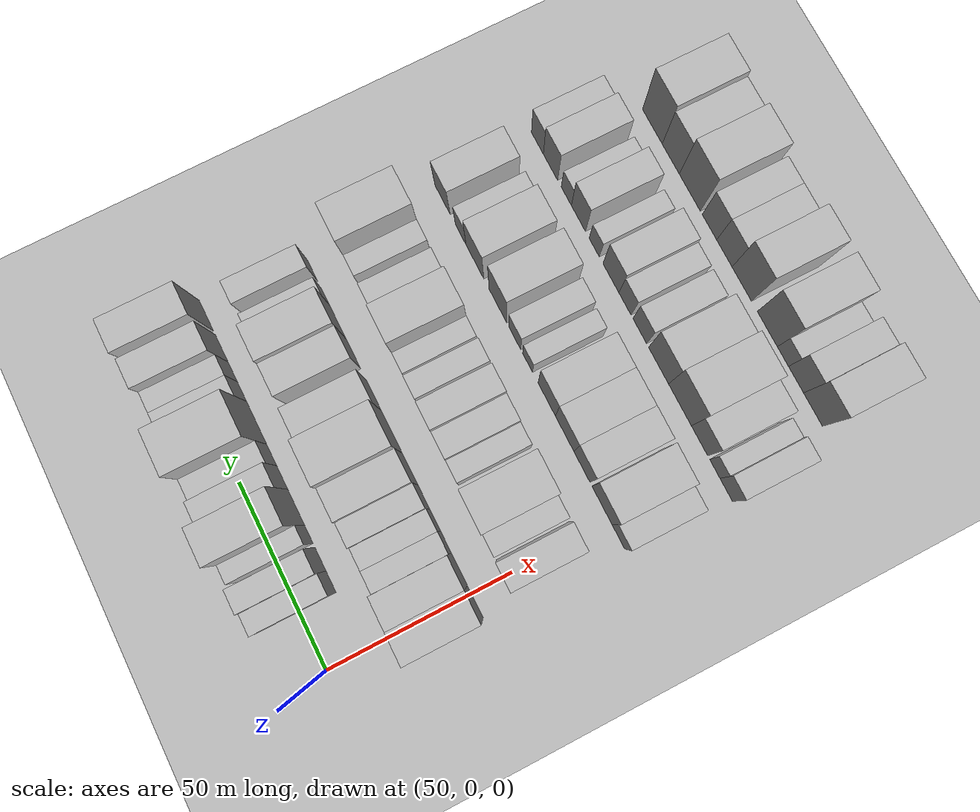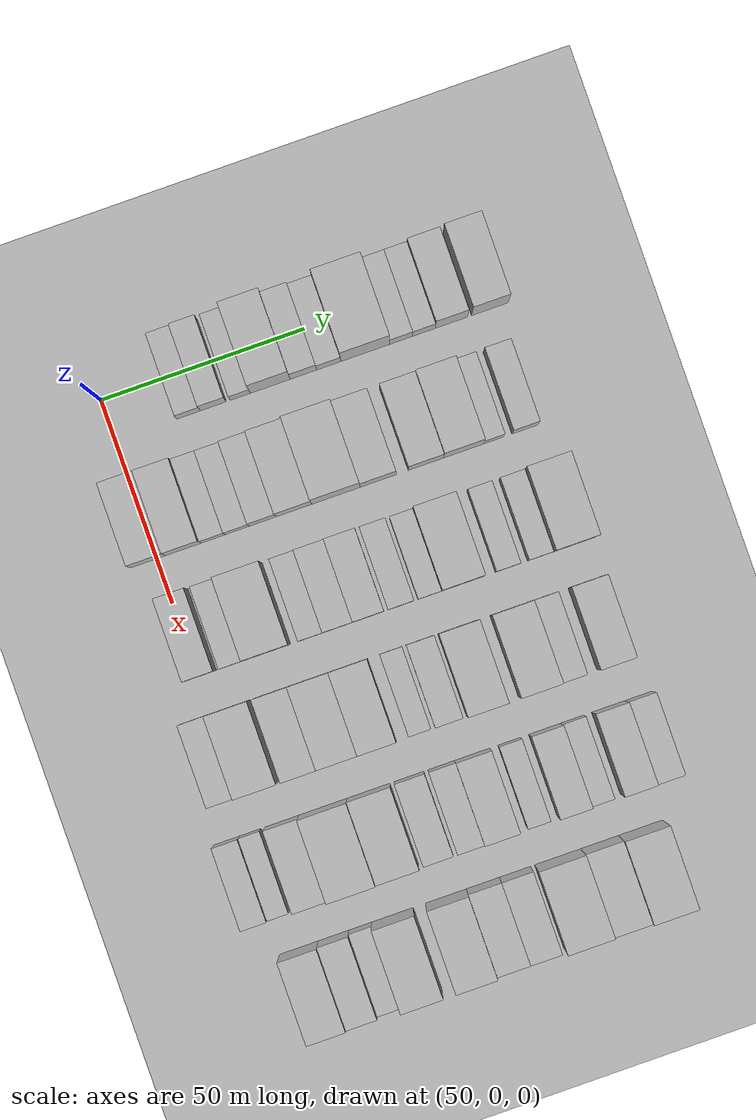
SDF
<sdf version="1.6">
 <world name="default">
  <include><name>ground_plane_1</name><uri>model://HANNAS_ground_plane</uri></include>
  <include>
   <name>ground_plane_2</name>
   <uri>model://HANNAS_ground_plane</uri>
   <pose>100 0 0  0 0 0</pose>
  </include>
  <model name="building_58">
   <static>1</static>
   <pose>50.0000 18.1150 0 0.000000 0.000000 0.000000</pose>
   <link name="link">
    <pose>0 0 6.00 0 0 0</pose>
    <collision name="collision"><geometry><box><size>20.0000 5.7359 12.0000</size></box></geometry></collision>
    <visual name="visual">
     <cast_shadows>0</cast_shadows>
     <geometry><box><size>20.0000 5.7359 12.0000</size></box></geometry>
     <material>
      <script>
       <uri>model://HANNAS_wall/materials/scripts</uri>
       <uri>model://HANNAS_wall/materials/textures</uri>
       <name>vrc/HANNAS_wall</name>
      </script>
     </material>
    </visual>
   </link>
  </model>
  <model name="building_59">
   <static>1</static>
   <pose>50.0000 24.1416 0 0.000000 0.000000 0.000000</pose>
   <link name="link">
    <pose>0 0 7.50 0 0 0</pose>
    <collision name="collision"><geometry><box><size>20.0000 6.3172 15.0000</size></box></geometry></collision>
    <visual name="visual">
     <cast_shadows>0</cast_shadows>
     <geometry><box><size>20.0000 6.3172 15.0000</size></box></geometry>
     <material>
      <script>
       <uri>model://HANNAS_wall/materials/scripts</uri>
       <uri>model://HANNAS_wall/materials/textures</uri>
       <name>vrc/HANNAS_wall</name>
      </script>
     </material>
    </visual>
   </link>
  </model>
  <model name="building_60">
   <static>1</static>
   <pose>50.0000 30.7766 0 0.000000 0.000000 0.000000</pose>
   <link name="link">
    <pose>0 0 6.00 0 0 0</pose>
    <collision name="collision"><geometry><box><size>20.0000 4.9528 12.0000</size></box></geometry></collision>
    <visual name="visual">
     <cast_shadows>0</cast_shadows>
     <geometry><box><size>20.0000 4.9528 12.0000</size></box></geometry>
     <material>
      <script>
       <uri>model://HANNAS_wall/materials/scripts</uri>
       <uri>model://HANNAS_wall/materials/textures</uri>
       <name>vrc/HANNAS_wall</name>
      </script>
     </material>
    </visual>
   </link>
  </model>
  <model name="building_61">
   <static>1</static>
   <pose>50.0000 38.1352 0 0.000000 0.000000 0.000000</pose>
   <link name="link">
    <pose>0 0 12.00 0 0 0</pose>
    <collision name="collision"><geometry><box><size>20.0000 9.7643 24.0000</size></box></geometry></collision>
    <visual name="visual">
     <cast_shadows>0</cast_shadows>
     <geometry><box><size>20.0000 9.7643 24.0000</size></box></geometry>
     <material>
      <script>
       <uri>model://HANNAS_wall/materials/scripts</uri>
       <uri>model://HANNAS_wall/materials/textures</uri>
       <name>vrc/HANNAS_wall</name>
      </script>
     </material>
    </visual>
   </link>
  </model>
  <model name="building_62">
   <static>1</static>
   <pose>50.0000 46.2625 0 0.000000 0.000000 0.000000</pose>
   <link name="link">
    <pose>0 0 7.50 0 0 0</pose>
    <collision name="collision"><geometry><box><size>20.0000 6.4903 15.0000</size></box></geometry></collision>
    <visual name="visual">
     <cast_shadows>0</cast_shadows>
     <geometry><box><size>20.0000 6.4903 15.0000</size></box></geometry>
     <material>
      <script>
       <uri>model://HANNAS_wall/materials/scripts</uri>
       <uri>model://HANNAS_wall/materials/textures</uri>
       <name>vrc/HANNAS_wall</name>
      </script>
     </material>
    </visual>
   </link>
  </model>
  <model name="building_63">
   <static>1</static>
   <pose>50.0000 52.4807 0 0.000000 0.000000 0.000000</pose>
   <link name="link">
    <pose>0 0 6.00 0 0 0</pose>
    <collision name="collision"><geometry><box><size>20.0000 5.9462 12.0000</size></box></geometry></collision>
    <visual name="visual">
     <cast_shadows>0</cast_shadows>
     <geometry><box><size>20.0000 5.9462 12.0000</size></box></geometry>
     <material>
      <script>
       <uri>model://HANNAS_wall/materials/scripts</uri>
       <uri>model://HANNAS_wall/materials/textures</uri>
       <name>vrc/HANNAS_wall</name>
      </script>
     </material>
    </visual>
   </link>
  </model>
  <model name="building_64">
   <static>1</static>
   <pose>50.0000 61.4461 0 0.000000 0.000000 0.000000</pose>
   <link name="link">
    <pose>0 0 12.00 0 0 0</pose>
    <collision name="collision"><geometry><box><size>20.0000 11.9845 24.0000</size></box></geometry></collision>
    <visual name="visual">
     <cast_shadows>0</cast_shadows>
     <geometry><box><size>20.0000 11.9845 24.0000</size></box></geometry>
     <material>
      <script>
       <uri>model://HANNAS_wall/materials/scripts</uri>
       <uri>model://HANNAS_wall/materials/textures</uri>
       <name>vrc/HANNAS_wall</name>
      </script>
     </material>
    </visual>
   </link>
  </model>
  <model name="building_65">
   <static>1</static>
   <pose>50.0000 70.2443 0 0.000000 0.000000 0.000000</pose>
   <link name="link">
    <pose>0 0 6.00 0 0 0</pose>
    <collision name="collision"><geometry><box><size>20.0000 5.6118 12.0000</size></box></geometry></collision>
    <visual name="visual">
     <cast_shadows>0</cast_shadows>
     <geometry><box><size>20.0000 5.6118 12.0000</size></box></geometry>
     <material>
      <script>
       <uri>model://HANNAS_wall/materials/scripts</uri>
       <uri>model://HANNAS_wall/materials/textures</uri>
       <name>vrc/HANNAS_wall</name>
      </script>
     </material>
    </visual>
   </link>
  </model>
  <model name="building_66">
   <static>1</static>
   <pose>50.0000 75.8415 0 0.000000 0.000000 0.000000</pose>
   <link name="link">
    <pose>0 0 6.00 0 0 0</pose>
    <collision name="collision"><geometry><box><size>20.0000 5.5827 12.0000</size></box></geometry></collision>
    <visual name="visual">
     <cast_shadows>0</cast_shadows>
     <geometry><box><size>20.0000 5.5827 12.0000</size></box></geometry>
     <material>
      <script>
       <uri>model://HANNAS_wall/materials/scripts</uri>
       <uri>model://HANNAS_wall/materials/textures</uri>
       <name>vrc/HANNAS_wall</name>
      </script>
     </material>
    </visual>
   </link>
  </model>
  <model name="building_67">
   <static>1</static>
   <pose>50.0000 82.5876 0 0.000000 0.000000 0.000000</pose>
   <link name="link">
    <pose>0 0 9.00 0 0 0</pose>
    <collision name="collision"><geometry><box><size>20.0000 7.9095 18.0000</size></box></geometry></collision>
    <visual name="visual">
     <cast_shadows>0</cast_shadows>
     <geometry><box><size>20.0000 7.9095 18.0000</size></box></geometry>
     <material>
      <script>
       <uri>model://HANNAS_wall/materials/scripts</uri>
       <uri>model://HANNAS_wall/materials/textures</uri>
       <name>vrc/HANNAS_wall</name>
      </script>
     </material>
    </visual>
   </link>
  </model>
  <model name="building_68">
   <static>1</static>
   <pose>50.0000 92.0320 0 0.000000 0.000000 0.000000</pose>
   <link name="link">
    <pose>0 0 10.50 0 0 0</pose>
    <collision name="collision"><geometry><box><size>20.0000 8.9793 21.0000</size></box></geometry></collision>
    <visual name="visual">
     <cast_shadows>0</cast_shadows>
     <geometry><box><size>20.0000 8.9793 21.0000</size></box></geometry>
     <material>
      <script>
       <uri>model://HANNAS_wall/materials/scripts</uri>
       <uri>model://HANNAS_wall/materials/textures</uri>
       <name>vrc/HANNAS_wall</name>
      </script>
     </material>
    </visual>
   </link>
  </model>
  <model name="building_177">
   <static>1</static>
   <pose>79.0000 -1.9783 0 0.000000 0.000000 0.000000</pose>
   <link name="link">
    <pose>0 0 9.00 0 0 0</pose>
    <collision name="collision"><geometry><box><size>20.0000 8.4946 18.0000</size></box></geometry></collision>
    <visual name="visual">
     <cast_shadows>0</cast_shadows>
     <geometry><box><size>20.0000 8.4946 18.0000</size></box></geometry>
     <material>
      <script>
       <uri>model://HANNAS_wall/materials/scripts</uri>
       <uri>model://HANNAS_wall/materials/textures</uri>
       <name>vrc/HANNAS_wall</name>
      </script>
     </material>
    </visual>
   </link>
  </model>
  <model name="building_178">
   <static>1</static>
   <pose>79.0000 6.6307 0 0.000000 0.000000 0.000000</pose>
   <link name="link">
    <pose>0 0 9.00 0 0 0</pose>
    <collision name="collision"><geometry><box><size>20.0000 8.7234 18.0000</size></box></geometry></collision>
    <visual name="visual">
     <cast_shadows>0</cast_shadows>
     <geometry><box><size>20.0000 8.7234 18.0000</size></box></geometry>
     <material>
      <script>
       <uri>model://HANNAS_wall/materials/scripts</uri>
       <uri>model://HANNAS_wall/materials/textures</uri>
       <name>vrc/HANNAS_wall</name>
      </script>
     </material>
    </visual>
   </link>
  </model>
  <model name="building_179">
   <static>1</static>
   <pose>79.0000 13.9100 0 0.000000 0.000000 0.000000</pose>
   <link name="link">
    <pose>0 0 6.00 0 0 0</pose>
    <collision name="collision"><geometry><box><size>20.0000 5.8351 12.0000</size></box></geometry></collision>
    <visual name="visual">
     <cast_shadows>0</cast_shadows>
     <geometry><box><size>20.0000 5.8351 12.0000</size></box></geometry>
     <material>
      <script>
       <uri>model://HANNAS_wall/materials/scripts</uri>
       <uri>model://HANNAS_wall/materials/textures</uri>
       <name>vrc/HANNAS_wall</name>
      </script>
     </material>
    </visual>
   </link>
  </model>
  <model name="building_180">
   <static>1</static>
   <pose>79.0000 19.7990 0 0.000000 0.000000 0.000000</pose>
   <link name="link">
    <pose>0 0 6.00 0 0 0</pose>
    <collision name="collision"><geometry><box><size>20.0000 5.9429 12.0000</size></box></geometry></collision>
    <visual name="visual">
     <cast_shadows>0</cast_shadows>
     <geometry><box><size>20.0000 5.9429 12.0000</size></box></geometry>
     <material>
      <script>
       <uri>model://HANNAS_wall/materials/scripts</uri>
       <uri>model://HANNAS_wall/materials/textures</uri>
       <name>vrc/HANNAS_wall</name>
      </script>
     </material>
    </visual>
   </link>
  </model>
  <model name="building_181">
   <static>1</static>
   <pose>79.0000 26.0625 0 0.000000 0.000000 0.000000</pose>
   <link name="link">
    <pose>0 0 7.50 0 0 0</pose>
    <collision name="collision"><geometry><box><size>20.0000 6.5840 15.0000</size></box></geometry></collision>
    <visual name="visual">
     <cast_shadows>0</cast_shadows>
     <geometry><box><size>20.0000 6.5840 15.0000</size></box></geometry>
     <material>
      <script>
       <uri>model://HANNAS_wall/materials/scripts</uri>
       <uri>model://HANNAS_wall/materials/textures</uri>
       <name>vrc/HANNAS_wall</name>
      </script>
     </material>
    </visual>
   </link>
  </model>
  <model name="building_182">
   <static>1</static>
   <pose>79.0000 33.7383 0 0.000000 0.000000 0.000000</pose>
   <link name="link">
    <pose>0 0 9.00 0 0 0</pose>
    <collision name="collision"><geometry><box><size>20.0000 8.7677 18.0000</size></box></geometry></collision>
    <visual name="visual">
     <cast_shadows>0</cast_shadows>
     <geometry><box><size>20.0000 8.7677 18.0000</size></box></geometry>
     <material>
      <script>
       <uri>model://HANNAS_wall/materials/scripts</uri>
       <uri>model://HANNAS_wall/materials/textures</uri>
       <name>vrc/HANNAS_wall</name>
      </script>
     </material>
    </visual>
   </link>
  </model>
  <model name="building_183">
   <static>1</static>
   <pose>79.0000 44.0597 0 0.000000 0.000000 0.000000</pose>
   <link name="link">
    <pose>0 0 12.00 0 0 0</pose>
    <collision name="collision"><geometry><box><size>20.0000 11.8750 24.0000</size></box></geometry></collision>
    <visual name="visual">
     <cast_shadows>0</cast_shadows>
     <geometry><box><size>20.0000 11.8750 24.0000</size></box></geometry>
     <material>
      <script>
       <uri>model://HANNAS_wall/materials/scripts</uri>
       <uri>model://HANNAS_wall/materials/textures</uri>
       <name>vrc/HANNAS_wall</name>
      </script>
     </material>
    </visual>
   </link>
  </model>
  <model name="building_184">
   <static>1</static>
   <pose>79.0000 54.3816 0 0.000000 0.000000 0.000000</pose>
   <link name="link">
    <pose>0 0 9.00 0 0 0</pose>
    <collision name="collision"><geometry><box><size>20.0000 8.7688 18.0000</size></box></geometry></collision>
    <visual name="visual">
     <cast_shadows>0</cast_shadows>
     <geometry><box><size>20.0000 8.7688 18.0000</size></box></geometry>
     <material>
      <script>
       <uri>model://HANNAS_wall/materials/scripts</uri>
       <uri>model://HANNAS_wall/materials/textures</uri>
       <name>vrc/HANNAS_wall</name>
      </script>
     </material>
    </visual>
   </link>
  </model>
  <model name="building_185">
   <static>1</static>
   <pose>79.0000 66.1016 0 0.000000 0.000000 0.000000</pose>
   <link name="link">
    <pose>0 0 9.00 0 0 0</pose>
    <collision name="collision"><geometry><box><size>20.0000 8.6714 18.0000</size></box></geometry></collision>
    <visual name="visual">
     <cast_shadows>0</cast_shadows>
     <geometry><box><size>20.0000 8.6714 18.0000</size></box></geometry>
     <material>
      <script>
       <uri>model://HANNAS_wall/materials/scripts</uri>
       <uri>model://HANNAS_wall/materials/textures</uri>
       <name>vrc/HANNAS_wall</name>
      </script>
     </material>
    </visual>
   </link>
  </model>
  <model name="building_186">
   <static>1</static>
   <pose>79.0000 75.3210 0 0.000000 0.000000 0.000000</pose>
   <link name="link">
    <pose>0 0 10.50 0 0 0</pose>
    <collision name="collision"><geometry><box><size>20.0000 9.7673 21.0000</size></box></geometry></collision>
    <visual name="visual">
     <cast_shadows>0</cast_shadows>
     <geometry><box><size>20.0000 9.7673 21.0000</size></box></geometry>
     <material>
      <script>
       <uri>model://HANNAS_wall/materials/scripts</uri>
       <uri>model://HANNAS_wall/materials/textures</uri>
       <name>vrc/HANNAS_wall</name>
      </script>
     </material>
    </visual>
   </link>
  </model>
  <model name="building_187">
   <static>1</static>
   <pose>79.0000 82.7114 0 0.000000 0.000000 0.000000</pose>
   <link name="link">
    <pose>0 0 6.00 0 0 0</pose>
    <collision name="collision"><geometry><box><size>20.0000 5.0134 12.0000</size></box></geometry></collision>
    <visual name="visual">
     <cast_shadows>0</cast_shadows>
     <geometry><box><size>20.0000 5.0134 12.0000</size></box></geometry>
     <material>
      <script>
       <uri>model://HANNAS_wall/materials/scripts</uri>
       <uri>model://HANNAS_wall/materials/textures</uri>
       <name>vrc/HANNAS_wall</name>
      </script>
     </material>
    </visual>
   </link>
  </model>
  <model name="building_188">
   <static>1</static>
   <pose>79.0000 90.3979 0 0.000000 0.000000 0.000000</pose>
   <link name="link">
    <pose>0 0 7.50 0 0 0</pose>
    <collision name="collision"><geometry><box><size>20.0000 6.3596 15.0000</size></box></geometry></collision>
    <visual name="visual">
     <cast_shadows>0</cast_shadows>
     <geometry><box><size>20.0000 6.3596 15.0000</size></box></geometry>
     <material>
      <script>
       <uri>model://HANNAS_wall/materials/scripts</uri>
       <uri>model://HANNAS_wall/materials/textures</uri>
       <name>vrc/HANNAS_wall</name>
      </script>
     </material>
    </visual>
   </link>
  </model>
  <model name="building_299">
   <static>1</static>
   <pose>108.0000 0.7620 0 0.000000 0.000000 0.000000</pose>
   <link name="link">
    <pose>0 0 9.00 0 0 0</pose>
    <collision name="collision"><geometry><box><size>20.0000 7.5055 18.0000</size></box></geometry></collision>
    <visual name="visual">
     <cast_shadows>0</cast_shadows>
     <geometry><box><size>20.0000 7.5055 18.0000</size></box></geometry>
     <material>
      <script>
       <uri>model://HANNAS_wall/materials/scripts</uri>
       <uri>model://HANNAS_wall/materials/textures</uri>
       <name>vrc/HANNAS_wall</name>
      </script>
     </material>
    </visual>
   </link>
  </model>
  <model name="building_300">
   <static>1</static>
   <pose>108.0000 8.4899 0 0.000000 0.000000 0.000000</pose>
   <link name="link">
    <pose>0 0 6.00 0 0 0</pose>
    <collision name="collision"><geometry><box><size>20.0000 5.9502 12.0000</size></box></geometry></collision>
    <visual name="visual">
     <cast_shadows>0</cast_shadows>
     <geometry><box><size>20.0000 5.9502 12.0000</size></box></geometry>
     <material>
      <script>
       <uri>model://HANNAS_wall/materials/scripts</uri>
       <uri>model://HANNAS_wall/materials/textures</uri>
       <name>vrc/HANNAS_wall</name>
      </script>
     </material>
    </visual>
   </link>
  </model>
  <model name="building_301">
   <static>1</static>
   <pose>108.0000 17.1008 0 0.000000 0.000000 0.000000</pose>
   <link name="link">
    <pose>0 0 12.00 0 0 0</pose>
    <collision name="collision"><geometry><box><size>20.0000 11.2717 24.0000</size></box></geometry></collision>
    <visual name="visual">
     <cast_shadows>0</cast_shadows>
     <geometry><box><size>20.0000 11.2717 24.0000</size></box></geometry>
     <material>
      <script>
       <uri>model://HANNAS_wall/materials/scripts</uri>
       <uri>model://HANNAS_wall/materials/textures</uri>
       <name>vrc/HANNAS_wall</name>
      </script>
     </material>
    </visual>
   </link>
  </model>
  <model name="building_302">
   <static>1</static>
   <pose>108.0000 27.7262 0 0.000000 0.000000 0.000000</pose>
   <link name="link">
    <pose>0 0 6.00 0 0 0</pose>
    <collision name="collision"><geometry><box><size>20.0000 5.9791 12.0000</size></box></geometry></collision>
    <visual name="visual">
     <cast_shadows>0</cast_shadows>
     <geometry><box><size>20.0000 5.9791 12.0000</size></box></geometry>
     <material>
      <script>
       <uri>model://HANNAS_wall/materials/scripts</uri>
       <uri>model://HANNAS_wall/materials/textures</uri>
       <name>vrc/HANNAS_wall</name>
      </script>
     </material>
    </visual>
   </link>
  </model>
  <model name="building_303">
   <static>1</static>
   <pose>108.0000 34.3895 0 0.000000 0.000000 0.000000</pose>
   <link name="link">
    <pose>0 0 7.50 0 0 0</pose>
    <collision name="collision"><geometry><box><size>20.0000 7.3475 15.0000</size></box></geometry></collision>
    <visual name="visual">
     <cast_shadows>0</cast_shadows>
     <geometry><box><size>20.0000 7.3475 15.0000</size></box></geometry>
     <material>
      <script>
       <uri>model://HANNAS_wall/materials/scripts</uri>
       <uri>model://HANNAS_wall/materials/textures</uri>
       <name>vrc/HANNAS_wall</name>
      </script>
     </material>
    </visual>
   </link>
  </model>
  <model name="building_304">
   <static>1</static>
   <pose>108.0000 41.8544 0 0.000000 0.000000 0.000000</pose>
   <link name="link">
    <pose>0 0 9.00 0 0 0</pose>
    <collision name="collision"><geometry><box><size>20.0000 7.5824 18.0000</size></box></geometry></collision>
    <visual name="visual">
     <cast_shadows>0</cast_shadows>
     <geometry><box><size>20.0000 7.5824 18.0000</size></box></geometry>
     <material>
      <script>
       <uri>model://HANNAS_wall/materials/scripts</uri>
       <uri>model://HANNAS_wall/materials/textures</uri>
       <name>vrc/HANNAS_wall</name>
      </script>
     </material>
    </visual>
   </link>
  </model>
  <model name="building_305">
   <static>1</static>
   <pose>108.0000 49.7975 0 0.000000 0.000000 0.000000</pose>
   <link name="link">
    <pose>0 0 7.50 0 0 0</pose>
    <collision name="collision"><geometry><box><size>20.0000 6.3039 15.0000</size></box></geometry></collision>
    <visual name="visual">
     <cast_shadows>0</cast_shadows>
     <geometry><box><size>20.0000 6.3039 15.0000</size></box></geometry>
     <material>
      <script>
       <uri>model://HANNAS_wall/materials/scripts</uri>
       <uri>model://HANNAS_wall/materials/textures</uri>
       <name>vrc/HANNAS_wall</name>
      </script>
     </material>
    </visual>
   </link>
  </model>
  <model name="building_306">
   <static>1</static>
   <pose>108.0000 56.7983 0 0.000000 0.000000 0.000000</pose>
   <link name="link">
    <pose>0 0 6.00 0 0 0</pose>
    <collision name="collision"><geometry><box><size>20.0000 5.6977 12.0000</size></box></geometry></collision>
    <visual name="visual">
     <cast_shadows>0</cast_shadows>
     <geometry><box><size>20.0000 5.6977 12.0000</size></box></geometry>
     <material>
      <script>
       <uri>model://HANNAS_wall/materials/scripts</uri>
       <uri>model://HANNAS_wall/materials/textures</uri>
       <name>vrc/HANNAS_wall</name>
      </script>
     </material>
    </visual>
   </link>
  </model>
  <model name="building_307">
   <static>1</static>
   <pose>108.0000 64.8149 0 0.000000 0.000000 0.000000</pose>
   <link name="link">
    <pose>0 0 12.00 0 0 0</pose>
    <collision name="collision"><geometry><box><size>20.0000 10.3354 24.0000</size></box></geometry></collision>
    <visual name="visual">
     <cast_shadows>0</cast_shadows>
     <geometry><box><size>20.0000 10.3354 24.0000</size></box></geometry>
     <material>
      <script>
       <uri>model://HANNAS_wall/materials/scripts</uri>
       <uri>model://HANNAS_wall/materials/textures</uri>
       <name>vrc/HANNAS_wall</name>
      </script>
     </material>
    </visual>
   </link>
  </model>
  <model name="building_308">
   <static>1</static>
   <pose>108.0000 75.9277 0 0.000000 0.000000 0.000000</pose>
   <link name="link">
    <pose>0 0 6.00 0 0 0</pose>
    <collision name="collision"><geometry><box><size>20.0000 5.8903 12.0000</size></box></geometry></collision>
    <visual name="visual">
     <cast_shadows>0</cast_shadows>
     <geometry><box><size>20.0000 5.8903 12.0000</size></box></geometry>
     <material>
      <script>
       <uri>model://HANNAS_wall/materials/scripts</uri>
       <uri>model://HANNAS_wall/materials/textures</uri>
       <name>vrc/HANNAS_wall</name>
      </script>
     </material>
    </visual>
   </link>
  </model>
  <model name="building_309">
   <static>1</static>
   <pose>108.0000 83.8549 0 0.000000 0.000000 0.000000</pose>
   <link name="link">
    <pose>0 0 6.00 0 0 0</pose>
    <collision name="collision"><geometry><box><size>20.0000 5.9641 12.0000</size></box></geometry></collision>
    <visual name="visual">
     <cast_shadows>0</cast_shadows>
     <geometry><box><size>20.0000 5.9641 12.0000</size></box></geometry>
     <material>
      <script>
       <uri>model://HANNAS_wall/materials/scripts</uri>
       <uri>model://HANNAS_wall/materials/textures</uri>
       <name>vrc/HANNAS_wall</name>
      </script>
     </material>
    </visual>
   </link>
  </model>
  <model name="building_310">
   <static>1</static>
   <pose>108.0000 92.1430 0 0.000000 0.000000 0.000000</pose>
   <link name="link">
    <pose>0 0 12.00 0 0 0</pose>
    <collision name="collision"><geometry><box><size>20.0000 10.6122 24.0000</size></box></geometry></collision>
    <visual name="visual">
     <cast_shadows>0</cast_shadows>
     <geometry><box><size>20.0000 10.6122 24.0000</size></box></geometry>
     <material>
      <script>
       <uri>model://HANNAS_wall/materials/scripts</uri>
       <uri>model://HANNAS_wall/materials/textures</uri>
       <name>vrc/HANNAS_wall</name>
      </script>
     </material>
    </visual>
   </link>
  </model>
  <model name="building_412">
   <static>1</static>
   <pose>137.0000 -4.1550 0 0.000000 0.000000 0.000000</pose>
   <link name="link">
    <pose>0 0 7.50 0 0 0</pose>
    <collision name="collision"><geometry><box><size>20.0000 6.6315 15.0000</size></box></geometry></collision>
    <visual name="visual">
     <cast_shadows>0</cast_shadows>
     <geometry><box><size>20.0000 6.6315 15.0000</size></box></geometry>
     <material>
      <script>
       <uri>model://HANNAS_wall/materials/scripts</uri>
       <uri>model://HANNAS_wall/materials/textures</uri>
       <name>vrc/HANNAS_wall</name>
      </script>
     </material>
    </visual>
   </link>
  </model>
  <model name="building_413">
   <static>1</static>
   <pose>137.0000 4.3862 0 0.000000 0.000000 0.000000</pose>
   <link name="link">
    <pose>0 0 10.50 0 0 0</pose>
    <collision name="collision"><geometry><box><size>20.0000 10.4509 21.0000</size></box></geometry></collision>
    <visual name="visual">
     <cast_shadows>0</cast_shadows>
     <geometry><box><size>20.0000 10.4509 21.0000</size></box></geometry>
     <material>
      <script>
       <uri>model://HANNAS_wall/materials/scripts</uri>
       <uri>model://HANNAS_wall/materials/textures</uri>
       <name>vrc/HANNAS_wall</name>
      </script>
     </material>
    </visual>
   </link>
  </model>
  <model name="building_414">
   <static>1</static>
   <pose>137.0000 14.8713 0 0.000000 0.000000 0.000000</pose>
   <link name="link">
    <pose>0 0 10.50 0 0 0</pose>
    <collision name="collision"><geometry><box><size>20.0000 8.5192 21.0000</size></box></geometry></collision>
    <visual name="visual">
     <cast_shadows>0</cast_shadows>
     <geometry><box><size>20.0000 8.5192 21.0000</size></box></geometry>
     <material>
      <script>
       <uri>model://HANNAS_wall/materials/scripts</uri>
       <uri>model://HANNAS_wall/materials/textures</uri>
       <name>vrc/HANNAS_wall</name>
      </script>
     </material>
    </visual>
   </link>
  </model>
  <model name="building_415">
   <static>1</static>
   <pose>137.0000 24.0885 0 0.000000 0.000000 0.000000</pose>
   <link name="link">
    <pose>0 0 10.50 0 0 0</pose>
    <collision name="collision"><geometry><box><size>20.0000 9.9154 21.0000</size></box></geometry></collision>
    <visual name="visual">
     <cast_shadows>0</cast_shadows>
     <geometry><box><size>20.0000 9.9154 21.0000</size></box></geometry>
     <material>
      <script>
       <uri>model://HANNAS_wall/materials/scripts</uri>
       <uri>model://HANNAS_wall/materials/textures</uri>
       <name>vrc/HANNAS_wall</name>
      </script>
     </material>
    </visual>
   </link>
  </model>
  <model name="building_416">
   <static>1</static>
   <pose>137.0000 33.7271 0 0.000000 0.000000 0.000000</pose>
   <link name="link">
    <pose>0 0 10.50 0 0 0</pose>
    <collision name="collision"><geometry><box><size>20.0000 9.3618 21.0000</size></box></geometry></collision>
    <visual name="visual">
     <cast_shadows>0</cast_shadows>
     <geometry><box><size>20.0000 9.3618 21.0000</size></box></geometry>
     <material>
      <script>
       <uri>model://HANNAS_wall/materials/scripts</uri>
       <uri>model://HANNAS_wall/materials/textures</uri>
       <name>vrc/HANNAS_wall</name>
      </script>
     </material>
    </visual>
   </link>
  </model>
  <model name="building_417">
   <static>1</static>
   <pose>137.0000 44.1285 0 0.000000 0.000000 0.000000</pose>
   <link name="link">
    <pose>0 0 6.00 0 0 0</pose>
    <collision name="collision"><geometry><box><size>20.0000 5.4410 12.0000</size></box></geometry></collision>
    <visual name="visual">
     <cast_shadows>0</cast_shadows>
     <geometry><box><size>20.0000 5.4410 12.0000</size></box></geometry>
     <material>
      <script>
       <uri>model://HANNAS_wall/materials/scripts</uri>
       <uri>model://HANNAS_wall/materials/textures</uri>
       <name>vrc/HANNAS_wall</name>
      </script>
     </material>
    </visual>
   </link>
  </model>
  <model name="building_418">
   <static>1</static>
   <pose>137.0000 51.2408 0 0.000000 0.000000 0.000000</pose>
   <link name="link">
    <pose>0 0 7.50 0 0 0</pose>
    <collision name="collision"><geometry><box><size>20.0000 6.7835 15.0000</size></box></geometry></collision>
    <visual name="visual">
     <cast_shadows>0</cast_shadows>
     <geometry><box><size>20.0000 6.7835 15.0000</size></box></geometry>
     <material>
      <script>
       <uri>model://HANNAS_wall/materials/scripts</uri>
       <uri>model://HANNAS_wall/materials/textures</uri>
       <name>vrc/HANNAS_wall</name>
      </script>
     </material>
    </visual>
   </link>
  </model>
  <model name="building_419">
   <static>1</static>
   <pose>137.0000 60.5458 0 0.000000 0.000000 0.000000</pose>
   <link name="link">
    <pose>0 0 12.00 0 0 0</pose>
    <collision name="collision"><geometry><box><size>20.0000 9.8264 24.0000</size></box></geometry></collision>
    <visual name="visual">
     <cast_shadows>0</cast_shadows>
     <geometry><box><size>20.0000 9.8264 24.0000</size></box></geometry>
     <material>
      <script>
       <uri>model://HANNAS_wall/materials/scripts</uri>
       <uri>model://HANNAS_wall/materials/textures</uri>
       <name>vrc/HANNAS_wall</name>
      </script>
     </material>
    </visual>
   </link>
  </model>
  <model name="building_420">
   <static>1</static>
   <pose>137.0000 73.5224 0 0.000000 0.000000 0.000000</pose>
   <link name="link">
    <pose>0 0 10.50 0 0 0</pose>
    <collision name="collision"><geometry><box><size>20.0000 10.1269 21.0000</size></box></geometry></collision>
    <visual name="visual">
     <cast_shadows>0</cast_shadows>
     <geometry><box><size>20.0000 10.1269 21.0000</size></box></geometry>
     <material>
      <script>
       <uri>model://HANNAS_wall/materials/scripts</uri>
       <uri>model://HANNAS_wall/materials/textures</uri>
       <name>vrc/HANNAS_wall</name>
      </script>
     </material>
    </visual>
   </link>
  </model>
  <model name="building_421">
   <static>1</static>
   <pose>137.0000 81.6226 0 0.000000 0.000000 0.000000</pose>
   <link name="link">
    <pose>0 0 7.50 0 0 0</pose>
    <collision name="collision"><geometry><box><size>20.0000 6.0733 15.0000</size></box></geometry></collision>
    <visual name="visual">
     <cast_shadows>0</cast_shadows>
     <geometry><box><size>20.0000 6.0733 15.0000</size></box></geometry>
     <material>
      <script>
       <uri>model://HANNAS_wall/materials/scripts</uri>
       <uri>model://HANNAS_wall/materials/textures</uri>
       <name>vrc/HANNAS_wall</name>
      </script>
     </material>
    </visual>
   </link>
  </model>
  <model name="building_422">
   <static>1</static>
   <pose>137.0000 92.0492 0 0.000000 0.000000 0.000000</pose>
   <link name="link">
    <pose>0 0 9.00 0 0 0</pose>
    <collision name="collision"><geometry><box><size>20.0000 8.7800 18.0000</size></box></geometry></collision>
    <visual name="visual">
     <cast_shadows>0</cast_shadows>
     <geometry><box><size>20.0000 8.7800 18.0000</size></box></geometry>
     <material>
      <script>
       <uri>model://HANNAS_wall/materials/scripts</uri>
       <uri>model://HANNAS_wall/materials/textures</uri>
       <name>vrc/HANNAS_wall</name>
      </script>
     </material>
    </visual>
   </link>
  </model>
  <model name="building_529">
   <static>1</static>
   <pose>166.0000 -6.2747 0 0.000000 0.000000 0.000000</pose>
   <link name="link">
    <pose>0 0 7.50 0 0 0</pose>
    <collision name="collision"><geometry><box><size>20.0000 6.3139 15.0000</size></box></geometry></collision>
    <visual name="visual">
     <cast_shadows>0</cast_shadows>
     <geometry><box><size>20.0000 6.3139 15.0000</size></box></geometry>
     <material>
      <script>
       <uri>model://HANNAS_wall/materials/scripts</uri>
       <uri>model://HANNAS_wall/materials/textures</uri>
       <name>vrc/HANNAS_wall</name>
      </script>
     </material>
    </visual>
   </link>
  </model>
  <model name="building_530">
   <static>1</static>
   <pose>166.0000 -0.5027 0 0.000000 0.000000 0.000000</pose>
   <link name="link">
    <pose>0 0 6.00 0 0 0</pose>
    <collision name="collision"><geometry><box><size>20.0000 5.2302 12.0000</size></box></geometry></collision>
    <visual name="visual">
     <cast_shadows>0</cast_shadows>
     <geometry><box><size>20.0000 5.2302 12.0000</size></box></geometry>
     <material>
      <script>
       <uri>model://HANNAS_wall/materials/scripts</uri>
       <uri>model://HANNAS_wall/materials/textures</uri>
       <name>vrc/HANNAS_wall</name>
      </script>
     </material>
    </visual>
   </link>
  </model>
  <model name="building_531">
   <static>1</static>
   <pose>166.0000 7.2862 0 0.000000 0.000000 0.000000</pose>
   <link name="link">
    <pose>0 0 9.00 0 0 0</pose>
    <collision name="collision"><geometry><box><size>20.0000 8.3475 18.0000</size></box></geometry></collision>
    <visual name="visual">
     <cast_shadows>0</cast_shadows>
     <geometry><box><size>20.0000 8.3475 18.0000</size></box></geometry>
     <material>
      <script>
       <uri>model://HANNAS_wall/materials/scripts</uri>
       <uri>model://HANNAS_wall/materials/textures</uri>
       <name>vrc/HANNAS_wall</name>
      </script>
     </material>
    </visual>
   </link>
  </model>
  <model name="building_532">
   <static>1</static>
   <pose>166.0000 17.3526 0 0.000000 0.000000 0.000000</pose>
   <link name="link">
    <pose>0 0 12.00 0 0 0</pose>
    <collision name="collision"><geometry><box><size>20.0000 11.7853 24.0000</size></box></geometry></collision>
    <visual name="visual">
     <cast_shadows>0</cast_shadows>
     <geometry><box><size>20.0000 11.7853 24.0000</size></box></geometry>
     <material>
      <script>
       <uri>model://HANNAS_wall/materials/scripts</uri>
       <uri>model://HANNAS_wall/materials/textures</uri>
       <name>vrc/HANNAS_wall</name>
      </script>
     </material>
    </visual>
   </link>
  </model>
  <model name="building_533">
   <static>1</static>
   <pose>166.0000 28.4950 0 0.000000 0.000000 0.000000</pose>
   <link name="link">
    <pose>0 0 10.50 0 0 0</pose>
    <collision name="collision"><geometry><box><size>20.0000 10.4995 21.0000</size></box></geometry></collision>
    <visual name="visual">
     <cast_shadows>0</cast_shadows>
     <geometry><box><size>20.0000 10.4995 21.0000</size></box></geometry>
     <material>
      <script>
       <uri>model://HANNAS_wall/materials/scripts</uri>
       <uri>model://HANNAS_wall/materials/textures</uri>
       <name>vrc/HANNAS_wall</name>
      </script>
     </material>
    </visual>
   </link>
  </model>
  <model name="building_534">
   <static>1</static>
   <pose>166.0000 38.3947 0 0.000000 0.000000 0.000000</pose>
   <link name="link">
    <pose>0 0 7.50 0 0 0</pose>
    <collision name="collision"><geometry><box><size>20.0000 7.2999 15.0000</size></box></geometry></collision>
    <visual name="visual">
     <cast_shadows>0</cast_shadows>
     <geometry><box><size>20.0000 7.2999 15.0000</size></box></geometry>
     <material>
      <script>
       <uri>model://HANNAS_wall/materials/scripts</uri>
       <uri>model://HANNAS_wall/materials/textures</uri>
       <name>vrc/HANNAS_wall</name>
      </script>
     </material>
    </visual>
   </link>
  </model>
  <model name="building_535">
   <static>1</static>
   <pose>166.0000 46.3178 0 0.000000 0.000000 0.000000</pose>
   <link name="link">
    <pose>0 0 7.50 0 0 0</pose>
    <collision name="collision"><geometry><box><size>20.0000 6.5463 15.0000</size></box></geometry></collision>
    <visual name="visual">
     <cast_shadows>0</cast_shadows>
     <geometry><box><size>20.0000 6.5463 15.0000</size></box></geometry>
     <material>
      <script>
       <uri>model://HANNAS_wall/materials/scripts</uri>
       <uri>model://HANNAS_wall/materials/textures</uri>
       <name>vrc/HANNAS_wall</name>
      </script>
     </material>
    </visual>
   </link>
  </model>
  <model name="building_536">
   <static>1</static>
   <pose>166.0000 53.9001 0 0.000000 0.000000 0.000000</pose>
   <link name="link">
    <pose>0 0 9.00 0 0 0</pose>
    <collision name="collision"><geometry><box><size>20.0000 8.6182 18.0000</size></box></geometry></collision>
    <visual name="visual">
     <cast_shadows>0</cast_shadows>
     <geometry><box><size>20.0000 8.6182 18.0000</size></box></geometry>
     <material>
      <script>
       <uri>model://HANNAS_wall/materials/scripts</uri>
       <uri>model://HANNAS_wall/materials/textures</uri>
       <name>vrc/HANNAS_wall</name>
      </script>
     </material>
    </visual>
   </link>
  </model>
  <model name="building_537">
   <static>1</static>
   <pose>166.0000 62.9860 0 0.000000 0.000000 0.000000</pose>
   <link name="link">
    <pose>0 0 6.00 0 0 0</pose>
    <collision name="collision"><geometry><box><size>20.0000 5.5537 12.0000</size></box></geometry></collision>
    <visual name="visual">
     <cast_shadows>0</cast_shadows>
     <geometry><box><size>20.0000 5.5537 12.0000</size></box></geometry>
     <material>
      <script>
       <uri>model://HANNAS_wall/materials/scripts</uri>
       <uri>model://HANNAS_wall/materials/textures</uri>
       <name>vrc/HANNAS_wall</name>
      </script>
     </material>
    </visual>
   </link>
  </model>
  <model name="building_538">
   <static>1</static>
   <pose>166.0000 71.6771 0 0.000000 0.000000 0.000000</pose>
   <link name="link">
    <pose>0 0 9.00 0 0 0</pose>
    <collision name="collision"><geometry><box><size>20.0000 7.8283 18.0000</size></box></geometry></collision>
    <visual name="visual">
     <cast_shadows>0</cast_shadows>
     <geometry><box><size>20.0000 7.8283 18.0000</size></box></geometry>
     <material>
      <script>
       <uri>model://HANNAS_wall/materials/scripts</uri>
       <uri>model://HANNAS_wall/materials/textures</uri>
       <name>vrc/HANNAS_wall</name>
      </script>
     </material>
    </visual>
   </link>
  </model>
  <model name="building_539">
   <static>1</static>
   <pose>166.0000 78.4198 0 0.000000 0.000000 0.000000</pose>
   <link name="link">
    <pose>0 0 6.00 0 0 0</pose>
    <collision name="collision"><geometry><box><size>20.0000 5.6572 12.0000</size></box></geometry></collision>
    <visual name="visual">
     <cast_shadows>0</cast_shadows>
     <geometry><box><size>20.0000 5.6572 12.0000</size></box></geometry>
     <material>
      <script>
       <uri>model://HANNAS_wall/materials/scripts</uri>
       <uri>model://HANNAS_wall/materials/textures</uri>
       <name>vrc/HANNAS_wall</name>
      </script>
     </material>
    </visual>
   </link>
  </model>
  <model name="building_540">
   <static>1</static>
   <pose>166.0000 87.2874 0 0.000000 0.000000 0.000000</pose>
   <link name="link">
    <pose>0 0 9.00 0 0 0</pose>
    <collision name="collision"><geometry><box><size>20.0000 8.0780 18.0000</size></box></geometry></collision>
    <visual name="visual">
     <cast_shadows>0</cast_shadows>
     <geometry><box><size>20.0000 8.0780 18.0000</size></box></geometry>
     <material>
      <script>
       <uri>model://HANNAS_wall/materials/scripts</uri>
       <uri>model://HANNAS_wall/materials/textures</uri>
       <name>vrc/HANNAS_wall</name>
      </script>
     </material>
    </visual>
   </link>
  </model>
  <model name="building_541">
   <static>1</static>
   <pose>166.0000 94.7032 0 0.000000 0.000000 0.000000</pose>
   <link name="link">
    <pose>0 0 7.50 0 0 0</pose>
    <collision name="collision"><geometry><box><size>20.0000 6.7537 15.0000</size></box></geometry></collision>
    <visual name="visual">
     <cast_shadows>0</cast_shadows>
     <geometry><box><size>20.0000 6.7537 15.0000</size></box></geometry>
     <material>
      <script>
       <uri>model://HANNAS_wall/materials/scripts</uri>
       <uri>model://HANNAS_wall/materials/textures</uri>
       <name>vrc/HANNAS_wall</name>
      </script>
     </material>
    </visual>
   </link>
  </model>
  <model name="building_641">
   <static>1</static>
   <pose>195.0000 1.1848 0 0.000000 0.000000 0.000000</pose>
   <link name="link">
    <pose>0 0 10.50 0 0 0</pose>
    <collision name="collision"><geometry><box><size>20.0000 9.4303 21.0000</size></box></geometry></collision>
    <visual name="visual">
     <cast_shadows>0</cast_shadows>
     <geometry><box><size>20.0000 9.4303 21.0000</size></box></geometry>
     <material>
      <script>
       <uri>model://HANNAS_wall/materials/scripts</uri>
       <uri>model://HANNAS_wall/materials/textures</uri>
       <name>vrc/HANNAS_wall</name>
      </script>
     </material>
    </visual>
   </link>
  </model>
  <model name="building_642">
   <static>1</static>
   <pose>195.0000 9.6568 0 0.000000 0.000000 0.000000</pose>
   <link name="link">
    <pose>0 0 9.00 0 0 0</pose>
    <collision name="collision"><geometry><box><size>20.0000 7.5137 18.0000</size></box></geometry></collision>
    <visual name="visual">
     <cast_shadows>0</cast_shadows>
     <geometry><box><size>20.0000 7.5137 18.0000</size></box></geometry>
     <material>
      <script>
       <uri>model://HANNAS_wall/materials/scripts</uri>
       <uri>model://HANNAS_wall/materials/textures</uri>
       <name>vrc/HANNAS_wall</name>
      </script>
     </material>
    </visual>
   </link>
  </model>
  <model name="building_643">
   <static>1</static>
   <pose>195.0000 16.2286 0 0.000000 0.000000 0.000000</pose>
   <link name="link">
    <pose>0 0 6.00 0 0 0</pose>
    <collision name="collision"><geometry><box><size>20.0000 5.6298 12.0000</size></box></geometry></collision>
    <visual name="visual">
     <cast_shadows>0</cast_shadows>
     <geometry><box><size>20.0000 5.6298 12.0000</size></box></geometry>
     <material>
      <script>
       <uri>model://HANNAS_wall/materials/scripts</uri>
       <uri>model://HANNAS_wall/materials/textures</uri>
       <name>vrc/HANNAS_wall</name>
      </script>
     </material>
    </visual>
   </link>
  </model>
  <model name="building_644">
   <static>1</static>
   <pose>195.0000 24.1606 0 0.000000 0.000000 0.000000</pose>
   <link name="link">
    <pose>0 0 12.00 0 0 0</pose>
    <collision name="collision"><geometry><box><size>20.0000 10.2342 24.0000</size></box></geometry></collision>
    <visual name="visual">
     <cast_shadows>0</cast_shadows>
     <geometry><box><size>20.0000 10.2342 24.0000</size></box></geometry>
     <material>
      <script>
       <uri>model://HANNAS_wall/materials/scripts</uri>
       <uri>model://HANNAS_wall/materials/textures</uri>
       <name>vrc/HANNAS_wall</name>
      </script>
     </material>
    </visual>
   </link>
  </model>
  <model name="building_645">
   <static>1</static>
   <pose>195.0000 37.3074 0 0.000000 0.000000 0.000000</pose>
   <link name="link">
    <pose>0 0 12.00 0 0 0</pose>
    <collision name="collision"><geometry><box><size>20.0000 10.0594 24.0000</size></box></geometry></collision>
    <visual name="visual">
     <cast_shadows>0</cast_shadows>
     <geometry><box><size>20.0000 10.0594 24.0000</size></box></geometry>
     <material>
      <script>
       <uri>model://HANNAS_wall/materials/scripts</uri>
       <uri>model://HANNAS_wall/materials/textures</uri>
       <name>vrc/HANNAS_wall</name>
      </script>
     </material>
    </visual>
   </link>
  </model>
  <model name="building_646">
   <static>1</static>
   <pose>195.0000 46.3582 0 0.000000 0.000000 0.000000</pose>
   <link name="link">
    <pose>0 0 9.00 0 0 0</pose>
    <collision name="collision"><geometry><box><size>20.0000 8.0422 18.0000</size></box></geometry></collision>
    <visual name="visual">
     <cast_shadows>0</cast_shadows>
     <geometry><box><size>20.0000 8.0422 18.0000</size></box></geometry>
     <material>
      <script>
       <uri>model://HANNAS_wall/materials/scripts</uri>
       <uri>model://HANNAS_wall/materials/textures</uri>
       <name>vrc/HANNAS_wall</name>
      </script>
     </material>
    </visual>
   </link>
  </model>
  <model name="building_647">
   <static>1</static>
   <pose>195.0000 54.2152 0 0.000000 0.000000 0.000000</pose>
   <link name="link">
    <pose>0 0 9.00 0 0 0</pose>
    <collision name="collision"><geometry><box><size>20.0000 7.6717 18.0000</size></box></geometry></collision>
    <visual name="visual">
     <cast_shadows>0</cast_shadows>
     <geometry><box><size>20.0000 7.6717 18.0000</size></box></geometry>
     <material>
      <script>
       <uri>model://HANNAS_wall/materials/scripts</uri>
       <uri>model://HANNAS_wall/materials/textures</uri>
       <name>vrc/HANNAS_wall</name>
      </script>
     </material>
    </visual>
   </link>
  </model>
  <model name="building_648">
   <static>1</static>
   <pose>195.0000 64.7214 0 0.000000 0.000000 0.000000</pose>
   <link name="link">
    <pose>0 0 12.00 0 0 0</pose>
    <collision name="collision"><geometry><box><size>20.0000 11.3405 24.0000</size></box></geometry></collision>
    <visual name="visual">
     <cast_shadows>0</cast_shadows>
     <geometry><box><size>20.0000 11.3405 24.0000</size></box></geometry>
     <material>
      <script>
       <uri>model://HANNAS_wall/materials/scripts</uri>
       <uri>model://HANNAS_wall/materials/textures</uri>
       <name>vrc/HANNAS_wall</name>
      </script>
     </material>
    </visual>
   </link>
  </model>
  <model name="building_649">
   <static>1</static>
   <pose>195.0000 75.0055 0 0.000000 0.000000 0.000000</pose>
   <link name="link">
    <pose>0 0 10.50 0 0 0</pose>
    <collision name="collision"><geometry><box><size>20.0000 9.2278 21.0000</size></box></geometry></collision>
    <visual name="visual">
     <cast_shadows>0</cast_shadows>
     <geometry><box><size>20.0000 9.2278 21.0000</size></box></geometry>
     <material>
      <script>
       <uri>model://HANNAS_wall/materials/scripts</uri>
       <uri>model://HANNAS_wall/materials/textures</uri>
       <name>vrc/HANNAS_wall</name>
      </script>
     </material>
    </visual>
   </link>
  </model>
  <model name="building_650">
   <static>1</static>
   <pose>195.0000 85.0468 0 0.000000 0.000000 0.000000</pose>
   <link name="link">
    <pose>0 0 12.00 0 0 0</pose>
    <collision name="collision"><geometry><box><size>20.0000 10.8548 24.0000</size></box></geometry></collision>
    <visual name="visual">
     <cast_shadows>0</cast_shadows>
     <geometry><box><size>20.0000 10.8548 24.0000</size></box></geometry>
     <material>
      <script>
       <uri>model://HANNAS_wall/materials/scripts</uri>
       <uri>model://HANNAS_wall/materials/textures</uri>
       <name>vrc/HANNAS_wall</name>
      </script>
     </material>
    </visual>
   </link>
  </model>
 </world>
</sdf>
